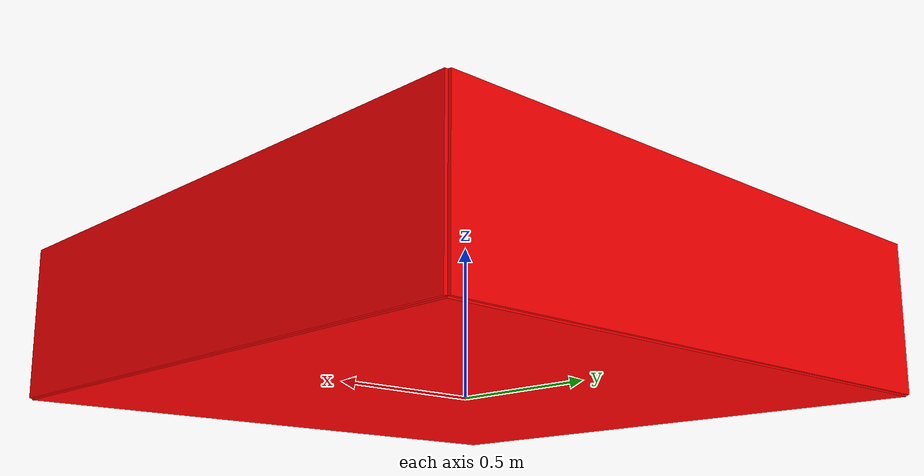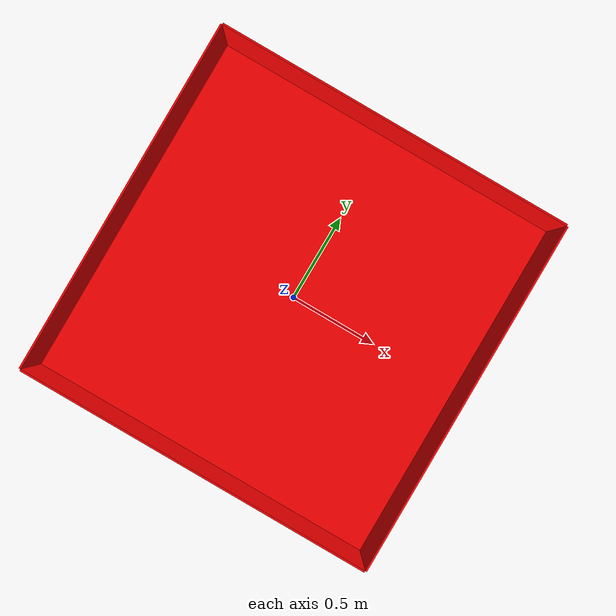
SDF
<?xml version="1.0"?>
<sdf version="1.6">
  <model name="basin_model">
    <link name="basin">
      <inertial>
        <mass>1</mass>
      </inertial>

      <!-- Dno: cienki prostokąt o wymiarach 2.0 x 2.0 m -->
      <collision name="bottom">
        <pose>0 0 0.005 0 0 0</pose>
        <geometry>
          <box>
            <size>2.0 2.0 0.01</size>
          </box>
        </geometry>
      </collision>
      <visual name="bottom_visual">
        <pose>0 0 0.005 0 0 0</pose>
        <geometry>
          <box>
            <size>2.0 2.0 0.01</size>
          </box>
        </geometry>
        <material>
          <!--czerwony kolor-->
          <ambient>1 0 0 1</ambient>
          <diffuse>1 0 0 1</diffuse>
        </material>
      </visual>

      <!-- Lewy bok -->
      <collision name="left_side">
        <!-- Pozycja: X = -1.005 (po lewej krawędzi), Y = 0, Z = 0.255 (środek wysokości: 0.5/2 + dno) -->
        <pose>-1.005 0 0.255 0 0 0</pose>
        <geometry>
          <box>
            <size>0.01 2.0 0.5</size>
          </box>
        </geometry>
      </collision>
      <visual name="left_side_visual">
        <pose>-1.005 0 0.255 0 0 0</pose>
        <geometry>
          <box>
            <size>0.01 2.0 0.5</size>
          </box>
        </geometry>
        <material>
          <ambient>1 0 0 1</ambient>
          <diffuse>1 0 0 1</diffuse>
        </material>
      </visual>

      <!-- Prawy bok -->
      <collision name="right_side">
        <pose>1.005 0 0.255 0 0 0</pose>
        <geometry>
          <box>
            <size>0.01 2.0 0.5</size>
          </box>
        </geometry>
      </collision>
      <visual name="right_side_visual">
        <pose>1.005 0 0.255 0 0 0</pose>
        <geometry>
          <box>
            <size>0.01 2.0 0.5</size>
          </box>
        </geometry>
        <material>
          <ambient>1 0 0 1</ambient>
          <diffuse>1 0 0 1</diffuse>
        </material>
      </visual>

      <!-- Przedni bok -->
      <collision name="front_side">
        <pose>0 -1.005 0.255 0 0 0</pose>
        <geometry>
          <box>
            <size>2.0 0.01 0.5</size>
          </box>
        </geometry>
      </collision>
      <visual name="front_side_visual">
        <pose>0 -1.005 0.255 0 0 0</pose>
        <geometry>
          <box>
            <size>2.0 0.01 0.5</size>
          </box>
        </geometry>
        <material>
          <ambient>1 0 0 1</ambient>
          <diffuse>1 0 0 1</diffuse>
        </material>
      </visual>

      <!-- Tylny bok -->
      <collision name="back_side">
        <pose>0 1.005 0.255 0 0 0</pose>
        <geometry>
          <box>
            <size>2.0 0.01 0.5</size>
          </box>
        </geometry>
      </collision>
      <visual name="back_side_visual">
        <pose>0 1.005 0.255 0 0 0</pose>
        <geometry>
          <box>
            <size>2.0 0.01 0.5</size>
          </box>
        </geometry>
        <material>
          <ambient>1 0 0 1</ambient>
          <diffuse>1 0 0 1</diffuse>
        </material>
      </visual>

    </link>
  </model>
</sdf>
